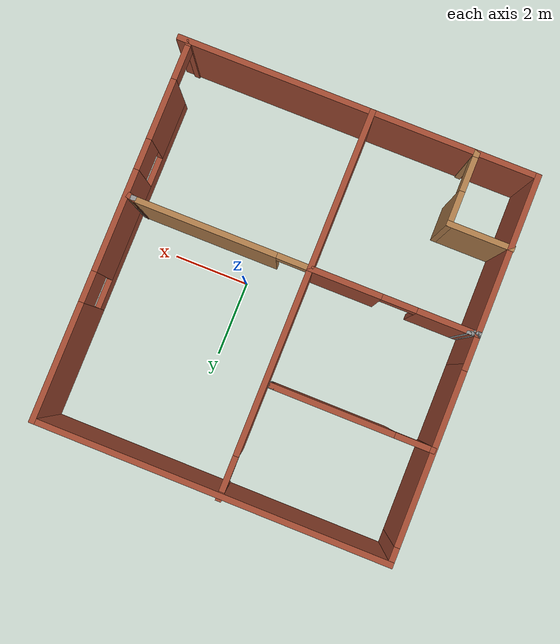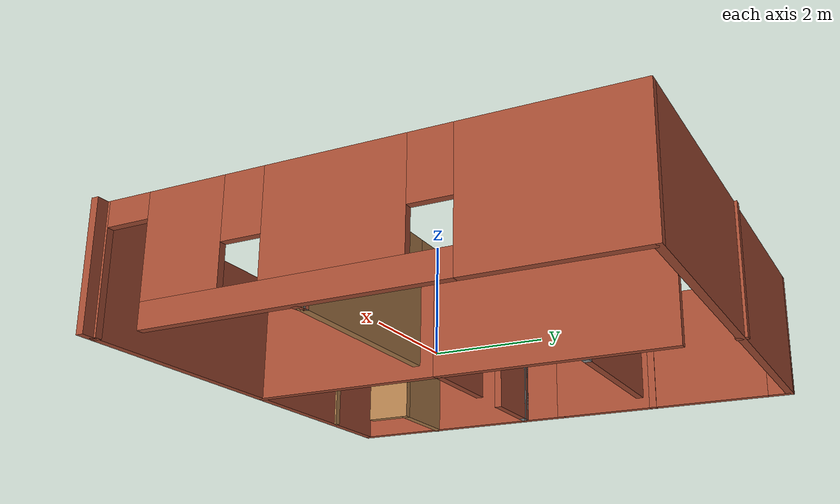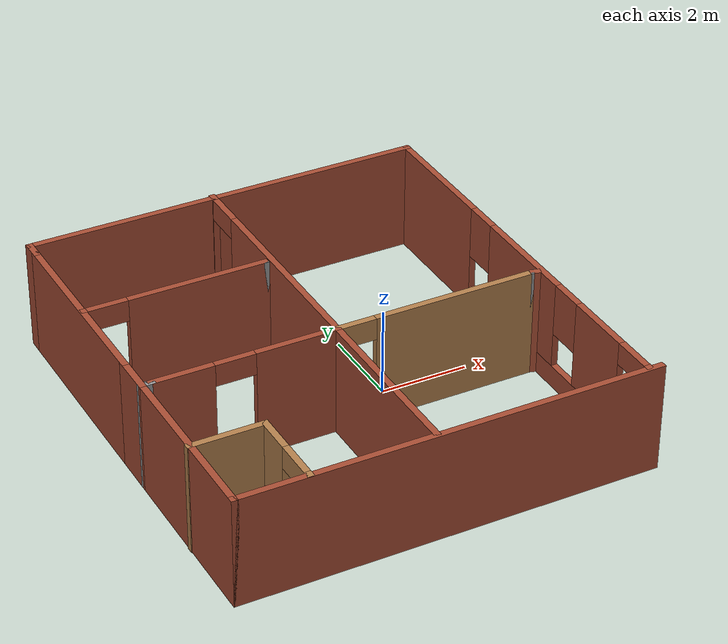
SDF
<?xml version='1.0'?>
<sdf version='1.7'>
  <model name='Untitled'>
    <pose>-1.10378 0.136956 0 0 -0 0</pose>
    <link name='Wall_0'>
      <collision name='Wall_0_Collision'>
        <geometry>
          <box>
            <size>4.25 0.15 2.5</size>
          </box>
        </geometry>
        <pose>0 0 1.25 0 -0 0</pose>
      </collision>
      <visual name='Wall_0_Visual'>
        <pose>0 0 1.25 0 -0 0</pose>
        <geometry>
          <box>
            <size>4.25 0.15 2.5</size>
          </box>
        </geometry>
        <material>
          <script>
            <uri>file://media/materials/scripts/gazebo.material</uri>
            <name>Gazebo/Bricks</name>
          </script>
          <ambient>1 1 1 1</ambient>
        </material>
        <meta>
          <layer>0</layer>
        </meta>
      </visual>
      <pose>-4.66622 -2.92696 0 0 -0 -1.5708</pose>
    </link>
    <link name='Wall_1'>
      <collision name='Wall_1_Collision'>
        <geometry>
          <box>
            <size>9.5 0.15 2.5</size>
          </box>
        </geometry>
        <pose>0 0 1.25 0 -0 0</pose>
      </collision>
      <visual name='Wall_1_Visual'>
        <pose>0 0 1.25 0 -0 0</pose>
        <geometry>
          <box>
            <size>9.5 0.15 2.5</size>
          </box>
        </geometry>
        <material>
          <script>
            <uri>file://media/materials/scripts/gazebo.material</uri>
            <name>Gazebo/Bricks</name>
          </script>
          <ambient>1 1 1 1</ambient>
        </material>
        <meta>
          <layer>0</layer>
        </meta>
      </visual>
      <pose>0.008783 -4.97696 0 0 -0 0</pose>
    </link>
    <link name='Wall_11'>
      <collision name='Wall_11_Collision'>
        <geometry>
          <box>
            <size>0.5 0.15 2.5</size>
          </box>
        </geometry>
        <pose>0 0 1.25 0 -0 0</pose>
      </collision>
      <visual name='Wall_11_Visual'>
        <pose>0 0 1.25 0 -0 0</pose>
        <geometry>
          <box>
            <size>0.5 0.15 2.5</size>
          </box>
        </geometry>
        <material>
          <script>
            <uri>file://media/materials/scripts/gazebo.material</uri>
            <name>Gazebo/Bricks</name>
          </script>
          <ambient>1 1 1 1</ambient>
        </material>
        <meta>
          <layer>0</layer>
        </meta>
      </visual>
      <pose>-4.66622 4.74804 0 0 -0 1.5708</pose>
    </link>
    <link name='Wall_12'>
      <collision name='Wall_12_Collision'>
        <geometry>
          <box>
            <size>9.25 0.15 2.5</size>
          </box>
        </geometry>
        <pose>0 0 1.25 0 -0 0</pose>
      </collision>
      <visual name='Wall_12_Visual'>
        <pose>0 0 1.25 0 -0 0</pose>
        <geometry>
          <box>
            <size>9.25 0.15 2.5</size>
          </box>
        </geometry>
        <material>
          <script>
            <uri>file://media/materials/scripts/gazebo.material</uri>
            <name>Gazebo/Bricks</name>
          </script>
          <ambient>1 1 1 1</ambient>
        </material>
        <meta>
          <layer>0</layer>
        </meta>
      </visual>
      <pose>-0.116217 4.92304 0 0 -0 0</pose>
    </link>
    <link name='Wall_13'>
      <pose>4.43378 -0.001956 0 0 -0 -1.5708</pose>
      <visual name='Wall_13_Visual_0'>
        <pose>-3.45207 0 1.25 0 -0 0</pose>
        <geometry>
          <box>
            <size>3.09586 0.15 2.5</size>
          </box>
        </geometry>
        <material>
          <script>
            <uri>file://media/materials/scripts/gazebo.material</uri>
            <name>Gazebo/Bricks</name>
          </script>
          <ambient>1 1 1 1</ambient>
        </material>
        <meta>
          <layer>0</layer>
        </meta>
      </visual>
      <collision name='Wall_13_Collision_0'>
        <geometry>
          <box>
            <size>3.09586 0.15 2.5</size>
          </box>
        </geometry>
        <pose>-3.45207 0 1.25 0 -0 0</pose>
      </collision>
      <visual name='Wall_13_Visual_1'>
        <pose>4.92835 0 1.25 0 -0 0</pose>
        <geometry>
          <box>
            <size>0.14329 0.15 2.5</size>
          </box>
        </geometry>
        <material>
          <script>
            <uri>file://media/materials/scripts/gazebo.material</uri>
            <name>Gazebo/Bricks</name>
          </script>
          <ambient>1 1 1 1</ambient>
        </material>
        <meta>
          <layer>0</layer>
        </meta>
      </visual>
      <collision name='Wall_13_Collision_1'>
        <geometry>
          <box>
            <size>0.14329 0.15 2.5</size>
          </box>
        </geometry>
        <pose>4.92835 0 1.25 0 -0 0</pose>
      </collision>
      <visual name='Wall_13_Visual_2'>
        <pose>1.02629 0 0.25 0 -0 0</pose>
        <geometry>
          <box>
            <size>5.86085 0.15 0.5</size>
          </box>
        </geometry>
        <material>
          <script>
            <uri>file://media/materials/scripts/gazebo.material</uri>
            <name>Gazebo/Bricks</name>
          </script>
          <ambient>1 1 1 1</ambient>
        </material>
        <meta>
          <layer>0</layer>
        </meta>
      </visual>
      <collision name='Wall_13_Collision_2'>
        <geometry>
          <box>
            <size>5.86085 0.15 0.5</size>
          </box>
        </geometry>
        <pose>1.02629 0 0.25 0 -0 0</pose>
      </collision>
      <visual name='Wall_13_Visual_3'>
        <pose>0.226975 0 1.5 0 -0 0</pose>
        <geometry>
          <box>
            <size>2.66223 0.15 2</size>
          </box>
        </geometry>
        <material>
          <script>
            <uri>file://media/materials/scripts/gazebo.material</uri>
            <name>Gazebo/Bricks</name>
          </script>
          <ambient>1 1 1 1</ambient>
        </material>
        <meta>
          <layer>0</layer>
        </meta>
      </visual>
      <collision name='Wall_13_Collision_3'>
        <geometry>
          <box>
            <size>2.66223 0.15 2</size>
          </box>
        </geometry>
        <pose>0.226975 0 1.5 0 -0 0</pose>
      </collision>
      <visual name='Wall_13_Visual_4'>
        <pose>3.1574 0 1.5 0 -0 0</pose>
        <geometry>
          <box>
            <size>1.59862 0.15 2</size>
          </box>
        </geometry>
        <material>
          <script>
            <uri>file://media/materials/scripts/gazebo.material</uri>
            <name>Gazebo/Bricks</name>
          </script>
          <ambient>1 1 1 1</ambient>
        </material>
        <meta>
          <layer>0</layer>
        </meta>
      </visual>
      <collision name='Wall_13_Collision_4'>
        <geometry>
          <box>
            <size>1.59862 0.15 2</size>
          </box>
        </geometry>
        <pose>3.1574 0 1.5 0 -0 0</pose>
      </collision>
      <visual name='Wall_13_Visual_5'>
        <pose>-1.50414 0 1.9 0 -0 0</pose>
        <geometry>
          <box>
            <size>0.8 0.15 1.2</size>
          </box>
        </geometry>
        <material>
          <script>
            <uri>file://media/materials/scripts/gazebo.material</uri>
            <name>Gazebo/Bricks</name>
          </script>
          <ambient>1 1 1 1</ambient>
        </material>
        <meta>
          <layer>0</layer>
        </meta>
      </visual>
      <collision name='Wall_13_Collision_5'>
        <geometry>
          <box>
            <size>0.8 0.15 1.2</size>
          </box>
        </geometry>
        <pose>-1.50414 0 1.9 0 -0 0</pose>
      </collision>
      <visual name='Wall_13_Visual_6'>
        <pose>1.95809 0 1.9 0 -0 0</pose>
        <geometry>
          <box>
            <size>0.8 0.15 1.2</size>
          </box>
        </geometry>
        <material>
          <script>
            <uri>file://media/materials/scripts/gazebo.material</uri>
            <name>Gazebo/Bricks</name>
          </script>
          <ambient>1 1 1 1</ambient>
        </material>
        <meta>
          <layer>0</layer>
        </meta>
      </visual>
      <collision name='Wall_13_Collision_6'>
        <geometry>
          <box>
            <size>0.8 0.15 1.2</size>
          </box>
        </geometry>
        <pose>1.95809 0 1.9 0 -0 0</pose>
      </collision>
      <visual name='Wall_13_Visual_7'>
        <pose>4.40671 0 2.25 0 -0 0</pose>
        <geometry>
          <box>
            <size>0.9 0.15 0.5</size>
          </box>
        </geometry>
        <material>
          <script>
            <uri>file://media/materials/scripts/gazebo.material</uri>
            <name>Gazebo/Bricks</name>
          </script>
          <ambient>1 1 1 1</ambient>
        </material>
        <meta>
          <layer>0</layer>
        </meta>
      </visual>
      <collision name='Wall_13_Collision_7'>
        <geometry>
          <box>
            <size>0.9 0.15 0.5</size>
          </box>
        </geometry>
        <pose>4.40671 0 2.25 0 -0 0</pose>
      </collision>
    </link>
    <link name='Wall_15'>
      <collision name='Wall_15_Collision'>
        <geometry>
          <box>
            <size>4.25 0.15 2.5</size>
          </box>
        </geometry>
        <pose>0 0 1.25 0 -0 0</pose>
      </collision>
      <visual name='Wall_15_Visual'>
        <pose>0 0 1.25 0 -0 0</pose>
        <geometry>
          <box>
            <size>4.25 0.15 2.5</size>
          </box>
        </geometry>
        <material>
          <script>
            <uri>file://media/materials/scripts/gazebo.material</uri>
            <name>Gazebo/Bricks</name>
          </script>
          <ambient>1 1 1 1</ambient>
        </material>
        <meta>
          <layer>0</layer>
        </meta>
      </visual>
      <pose>-0.363037 -2.92305 0 0 -0 1.5708</pose>
    </link>
    <link name='Wall_16'>
      <pose>1.93696 -0.873045 0 0 -0 0</pose>
      <visual name='Wall_16_Visual_0'>
        <pose>-2.35488 0 1.25 0 -0 0</pose>
        <geometry>
          <box>
            <size>0.040239 0.15 2.5</size>
          </box>
        </geometry>
        <material>
          <script>
            <uri>file://media/materials/scripts/gazebo.material</uri>
            <name>Gazebo/Wood</name>
          </script>
          <ambient>1 1 1 1</ambient>
        </material>
        <meta>
          <layer>0</layer>
        </meta>
      </visual>
      <collision name='Wall_16_Collision_0'>
        <geometry>
          <box>
            <size>0.040239 0.15 2.5</size>
          </box>
        </geometry>
        <pose>-2.35488 0 1.25 0 -0 0</pose>
      </collision>
      <visual name='Wall_16_Visual_1'>
        <pose>0.47012 0 1.25 0 -0 0</pose>
        <geometry>
          <box>
            <size>3.80976 0.15 2.5</size>
          </box>
        </geometry>
        <material>
          <script>
            <uri>file://media/materials/scripts/gazebo.material</uri>
            <name>Gazebo/Wood</name>
          </script>
          <ambient>1 1 1 1</ambient>
        </material>
        <meta>
          <layer>0</layer>
        </meta>
      </visual>
      <collision name='Wall_16_Collision_1'>
        <geometry>
          <box>
            <size>3.80976 0.15 2.5</size>
          </box>
        </geometry>
        <pose>0.47012 0 1.25 0 -0 0</pose>
      </collision>
      <visual name='Wall_16_Visual_2'>
        <pose>-1.88476 0 2.25 0 -0 0</pose>
        <geometry>
          <box>
            <size>0.9 0.15 0.5</size>
          </box>
        </geometry>
        <material>
          <script>
            <uri>file://media/materials/scripts/gazebo.material</uri>
            <name>Gazebo/Wood</name>
          </script>
          <ambient>1 1 1 1</ambient>
        </material>
        <meta>
          <layer>0</layer>
        </meta>
      </visual>
      <collision name='Wall_16_Collision_2'>
        <geometry>
          <box>
            <size>0.9 0.15 0.5</size>
          </box>
        </geometry>
        <pose>-1.88476 0 2.25 0 -0 0</pose>
      </collision>
    </link>
    <link name='Wall_17'>
      <collision name='Wall_17_Collision'>
        <geometry>
          <box>
            <size>0.15 0.15 2.5</size>
          </box>
        </geometry>
        <pose>0 0 1.25 0 -0 0</pose>
      </collision>
      <visual name='Wall_17_Visual'>
        <pose>0 0 1.25 0 -0 0</pose>
        <geometry>
          <box>
            <size>0.15 0.15 2.5</size>
          </box>
        </geometry>
        <material>
          <script>
            <uri>file://media/materials/scripts/gazebo.material</uri>
            <name>Gazebo/Grey</name>
          </script>
          <ambient>1 1 1 1</ambient>
        </material>
        <meta>
          <layer>0</layer>
        </meta>
      </visual>
      <pose>4.23696 -0.873045 0 0 -0 0</pose>
    </link>
    <link name='Wall_18'>
      <collision name='Wall_18_Collision'>
        <geometry>
          <box>
            <size>0.25 0.15 2.5</size>
          </box>
        </geometry>
        <pose>0 0 1.25 0 -0 0</pose>
      </collision>
      <visual name='Wall_18_Visual'>
        <pose>0 0 1.25 0 -0 0</pose>
        <geometry>
          <box>
            <size>0.25 0.15 2.5</size>
          </box>
        </geometry>
        <material>
          <script>
            <uri>file://media/materials/scripts/gazebo.material</uri>
            <name>Gazebo/Bricks</name>
          </script>
          <ambient>1 1 1 1</ambient>
        </material>
        <meta>
          <layer>0</layer>
        </meta>
      </visual>
      <pose>4.28526 -0.885986 0 0 -0 -0.261799</pose>
    </link>
    <link name='Wall_20'>
      <pose>-2.41304 -0.873045 0 0 -0 3.14159</pose>
      <visual name='Wall_20_Visual_0'>
        <pose>-1.16375 0 1.25 0 -0 0</pose>
        <geometry>
          <box>
            <size>1.9225 0.15 2.5</size>
          </box>
        </geometry>
        <material>
          <script>
            <uri>file://media/materials/scripts/gazebo.material</uri>
            <name>Gazebo/Bricks</name>
          </script>
          <ambient>1 1 1 1</ambient>
        </material>
        <meta>
          <layer>0</layer>
        </meta>
      </visual>
      <collision name='Wall_20_Collision_0'>
        <geometry>
          <box>
            <size>1.9225 0.15 2.5</size>
          </box>
        </geometry>
        <pose>-1.16375 0 1.25 0 -0 0</pose>
      </collision>
      <visual name='Wall_20_Visual_1'>
        <pose>1.41125 0 1.25 0 -0 0</pose>
        <geometry>
          <box>
            <size>1.42749 0.15 2.5</size>
          </box>
        </geometry>
        <material>
          <script>
            <uri>file://media/materials/scripts/gazebo.material</uri>
            <name>Gazebo/Bricks</name>
          </script>
          <ambient>1 1 1 1</ambient>
        </material>
        <meta>
          <layer>0</layer>
        </meta>
      </visual>
      <collision name='Wall_20_Collision_1'>
        <geometry>
          <box>
            <size>1.42749 0.15 2.5</size>
          </box>
        </geometry>
        <pose>1.41125 0 1.25 0 -0 0</pose>
      </collision>
      <visual name='Wall_20_Visual_2'>
        <pose>0.247505 0 2.25 0 -0 0</pose>
        <geometry>
          <box>
            <size>0.9 0.15 0.5</size>
          </box>
        </geometry>
        <material>
          <script>
            <uri>file://media/materials/scripts/gazebo.material</uri>
            <name>Gazebo/Bricks</name>
          </script>
          <ambient>1 1 1 1</ambient>
        </material>
        <meta>
          <layer>0</layer>
        </meta>
      </visual>
      <collision name='Wall_20_Collision_2'>
        <geometry>
          <box>
            <size>0.9 0.15 0.5</size>
          </box>
        </geometry>
        <pose>0.247505 0 2.25 0 -0 0</pose>
      </collision>
    </link>
    <link name='Wall_21'>
      <collision name='Wall_21_Collision'>
        <geometry>
          <box>
            <size>0.353217 0.15 2.5</size>
          </box>
        </geometry>
        <pose>0 0 1.25 0 -0 0</pose>
      </collision>
      <visual name='Wall_21_Visual'>
        <pose>0 0 1.25 0 -0 0</pose>
        <geometry>
          <box>
            <size>0.353217 0.15 2.5</size>
          </box>
        </geometry>
        <material>
          <script>
            <uri>file://media/materials/scripts/gazebo.material</uri>
            <name>Gazebo/Grey</name>
          </script>
          <ambient>1 1 1 1</ambient>
        </material>
        <meta>
          <layer>0</layer>
        </meta>
      </visual>
      <pose>-4.56463 -0.875 0 0 -0 -3.12235</pose>
    </link>
    <link name='Wall_22'>
      <collision name='Wall_22_Collision'>
        <geometry>
          <box>
            <size>0.353217 0.15 2.5</size>
          </box>
        </geometry>
        <pose>0 0 1.25 0 -0 0</pose>
      </collision>
      <visual name='Wall_22_Visual'>
        <pose>0 0 1.25 0 -0 0</pose>
        <geometry>
          <box>
            <size>0.353217 0.15 2.5</size>
          </box>
        </geometry>
        <material>
          <script>
            <uri>file://media/materials/scripts/gazebo.material</uri>
            <name>Gazebo/Grey</name>
          </script>
          <ambient>1 1 1 1</ambient>
        </material>
        <meta>
          <layer>0</layer>
        </meta>
      </visual>
      <pose>-4.56463 -0.875 0 0 -0 0.019246</pose>
    </link>
    <link name='Wall_24'>
      <pose>-0.363037 2.05195 0 0 -0 1.5708</pose>
      <visual name='Wall_24_Visual_0'>
        <pose>-0.56325 0 1.25 0 -0 0</pose>
        <geometry>
          <box>
            <size>4.8735 0.15 2.5</size>
          </box>
        </geometry>
        <material>
          <script>
            <uri>file://media/materials/scripts/gazebo.material</uri>
            <name>Gazebo/Bricks</name>
          </script>
          <ambient>1 1 1 1</ambient>
        </material>
        <meta>
          <layer>0</layer>
        </meta>
      </visual>
      <collision name='Wall_24_Collision_0'>
        <geometry>
          <box>
            <size>4.8735 0.15 2.5</size>
          </box>
        </geometry>
        <pose>-0.56325 0 1.25 0 -0 0</pose>
      </collision>
      <visual name='Wall_24_Visual_1'>
        <pose>2.88675 0 1.25 0 -0 0</pose>
        <geometry>
          <box>
            <size>0.2265 0.15 2.5</size>
          </box>
        </geometry>
        <material>
          <script>
            <uri>file://media/materials/scripts/gazebo.material</uri>
            <name>Gazebo/Bricks</name>
          </script>
          <ambient>1 1 1 1</ambient>
        </material>
        <meta>
          <layer>0</layer>
        </meta>
      </visual>
      <collision name='Wall_24_Collision_1'>
        <geometry>
          <box>
            <size>0.2265 0.15 2.5</size>
          </box>
        </geometry>
        <pose>2.88675 0 1.25 0 -0 0</pose>
      </collision>
      <visual name='Wall_24_Visual_2'>
        <pose>2.3235 0 2.25 0 -0 0</pose>
        <geometry>
          <box>
            <size>0.9 0.15 0.5</size>
          </box>
        </geometry>
        <material>
          <script>
            <uri>file://media/materials/scripts/gazebo.material</uri>
            <name>Gazebo/Bricks</name>
          </script>
          <ambient>1 1 1 1</ambient>
        </material>
        <meta>
          <layer>0</layer>
        </meta>
      </visual>
      <collision name='Wall_24_Collision_2'>
        <geometry>
          <box>
            <size>0.9 0.15 0.5</size>
          </box>
        </geometry>
        <pose>2.3235 0 2.25 0 -0 0</pose>
      </collision>
    </link>
    <link name='Wall_26'>
      <pose>-2.58526 2.07702 0 0 -0 0</pose>
      <visual name='Wall_26_Visual_0'>
        <pose>-2.05868 0 1.25 0 -0 0</pose>
        <geometry>
          <box>
            <size>0.132646 0.15 2.5</size>
          </box>
        </geometry>
        <material>
          <script>
            <uri>file://media/materials/scripts/gazebo.material</uri>
            <name>Gazebo/Bricks</name>
          </script>
          <ambient>1 1 1 1</ambient>
        </material>
        <meta>
          <layer>0</layer>
        </meta>
      </visual>
      <collision name='Wall_26_Collision_0'>
        <geometry>
          <box>
            <size>0.132646 0.15 2.5</size>
          </box>
        </geometry>
        <pose>-2.05868 0 1.25 0 -0 0</pose>
      </collision>
      <visual name='Wall_26_Visual_1'>
        <pose>0.516323 0 1.25 0 -0 0</pose>
        <geometry>
          <box>
            <size>3.21735 0.15 2.5</size>
          </box>
        </geometry>
        <material>
          <script>
            <uri>file://media/materials/scripts/gazebo.material</uri>
            <name>Gazebo/Bricks</name>
          </script>
          <ambient>1 1 1 1</ambient>
        </material>
        <meta>
          <layer>0</layer>
        </meta>
      </visual>
      <collision name='Wall_26_Collision_1'>
        <geometry>
          <box>
            <size>3.21735 0.15 2.5</size>
          </box>
        </geometry>
        <pose>0.516323 0 1.25 0 -0 0</pose>
      </collision>
      <visual name='Wall_26_Visual_2'>
        <pose>-1.54235 0 2.25 0 -0 0</pose>
        <geometry>
          <box>
            <size>0.9 0.15 0.5</size>
          </box>
        </geometry>
        <material>
          <script>
            <uri>file://media/materials/scripts/gazebo.material</uri>
            <name>Gazebo/Bricks</name>
          </script>
          <ambient>1 1 1 1</ambient>
        </material>
        <meta>
          <layer>0</layer>
        </meta>
      </visual>
      <collision name='Wall_26_Collision_2'>
        <geometry>
          <box>
            <size>0.9 0.15 0.5</size>
          </box>
        </geometry>
        <pose>-1.54235 0 2.25 0 -0 0</pose>
      </collision>
    </link>
    <link name='Wall_27'>
      <collision name='Wall_27_Collision'>
        <geometry>
          <box>
            <size>0.15 0.15 2.5</size>
          </box>
        </geometry>
        <pose>0 0 1.25 0 -0 0</pose>
      </collision>
      <visual name='Wall_27_Visual'>
        <pose>0 0 1.25 0 -0 0</pose>
        <geometry>
          <box>
            <size>0.15 0.15 2.5</size>
          </box>
        </geometry>
        <material>
          <script>
            <uri>file://media/materials/scripts/gazebo.material</uri>
            <name>Gazebo/Grey</name>
          </script>
          <ambient>1 1 1 1</ambient>
        </material>
        <meta>
          <layer>0</layer>
        </meta>
      </visual>
      <pose>-0.535258 2.07702 0 0 -0 0</pose>
    </link>
    <link name='Wall_29'>
      <collision name='Wall_29_Collision'>
        <geometry>
          <box>
            <size>1.75 0.15 2.5</size>
          </box>
        </geometry>
        <pose>0 0 1.25 0 -0 0</pose>
      </collision>
      <visual name='Wall_29_Visual'>
        <pose>0 0 1.25 0 -0 0</pose>
        <geometry>
          <box>
            <size>1.75 0.15 2.5</size>
          </box>
        </geometry>
        <material>
          <script>
            <uri>file://media/materials/scripts/gazebo.material</uri>
            <name>Gazebo/Wood</name>
          </script>
          <ambient>1 1 1 1</ambient>
        </material>
        <meta>
          <layer>0</layer>
        </meta>
      </visual>
      <pose>-3.88378 -3.11412 0 0 -0 0</pose>
    </link>
    <link name='Wall_30'>
      <pose>-3.08378 -4.03912 0 0 -0 -1.5708</pose>
      <visual name='Wall_30_Visual_0'>
        <pose>-0.536006 0 1.25 0 -0 0</pose>
        <geometry>
          <box>
            <size>0.927989 0.15 2.5</size>
          </box>
        </geometry>
        <material>
          <script>
            <uri>file://media/materials/scripts/gazebo.material</uri>
            <name>Gazebo/Wood</name>
          </script>
          <ambient>1 1 1 1</ambient>
        </material>
        <meta>
          <layer>0</layer>
        </meta>
      </visual>
      <collision name='Wall_30_Collision_0'>
        <geometry>
          <box>
            <size>0.927989 0.15 2.5</size>
          </box>
        </geometry>
        <pose>-0.536006 0 1.25 0 -0 0</pose>
      </collision>
      <visual name='Wall_30_Visual_1'>
        <pose>0.913994 0 1.25 0 -0 0</pose>
        <geometry>
          <box>
            <size>0.172011 0.15 2.5</size>
          </box>
        </geometry>
        <material>
          <script>
            <uri>file://media/materials/scripts/gazebo.material</uri>
            <name>Gazebo/Wood</name>
          </script>
          <ambient>1 1 1 1</ambient>
        </material>
        <meta>
          <layer>0</layer>
        </meta>
      </visual>
      <collision name='Wall_30_Collision_1'>
        <geometry>
          <box>
            <size>0.172011 0.15 2.5</size>
          </box>
        </geometry>
        <pose>0.913994 0 1.25 0 -0 0</pose>
      </collision>
      <visual name='Wall_30_Visual_2'>
        <pose>0.377989 0 2.25 0 -0 0</pose>
        <geometry>
          <box>
            <size>0.9 0.15 0.5</size>
          </box>
        </geometry>
        <material>
          <script>
            <uri>file://media/materials/scripts/gazebo.material</uri>
            <name>Gazebo/Wood</name>
          </script>
          <ambient>1 1 1 1</ambient>
        </material>
        <meta>
          <layer>0</layer>
        </meta>
      </visual>
      <collision name='Wall_30_Collision_2'>
        <geometry>
          <box>
            <size>0.9 0.15 0.5</size>
          </box>
        </geometry>
        <pose>0.377989 0 2.25 0 -0 0</pose>
      </collision>
    </link>
    <link name='Wall_5'>
      <collision name='Wall_5_Collision'>
        <geometry>
          <box>
            <size>1 0.15 2.5</size>
          </box>
        </geometry>
        <pose>0 0 1.25 0 -0 0</pose>
      </collision>
      <visual name='Wall_5_Visual'>
        <pose>0 0 1.25 0 -0 0</pose>
        <geometry>
          <box>
            <size>1 0.15 2.5</size>
          </box>
        </geometry>
        <material>
          <script>
            <uri>file://media/materials/scripts/gazebo.material</uri>
            <name>Gazebo/Bricks</name>
          </script>
          <ambient>1 1 1 1</ambient>
        </material>
        <meta>
          <layer>0</layer>
        </meta>
      </visual>
      <pose>-4.66622 -0.451956 0 0 -0 1.5708</pose>
    </link>
    <link name='Wall_6'>
      <collision name='Wall_6_Collision'>
        <geometry>
          <box>
            <size>4.75 0.15 2.5</size>
          </box>
        </geometry>
        <pose>0 0 1.25 0 -0 0</pose>
      </collision>
      <visual name='Wall_6_Visual'>
        <pose>0 0 1.25 0 -0 0</pose>
        <geometry>
          <box>
            <size>4.75 0.15 2.5</size>
          </box>
        </geometry>
        <material>
          <script>
            <uri>file://media/materials/scripts/gazebo.material</uri>
            <name>Gazebo/Bricks</name>
          </script>
          <ambient>1 1 1 1</ambient>
        </material>
        <meta>
          <layer>0</layer>
        </meta>
      </visual>
      <pose>-4.66622 2.27304 0 0 -0 1.5708</pose>
    </link>
    <static>1</static>
  </model>
</sdf>
